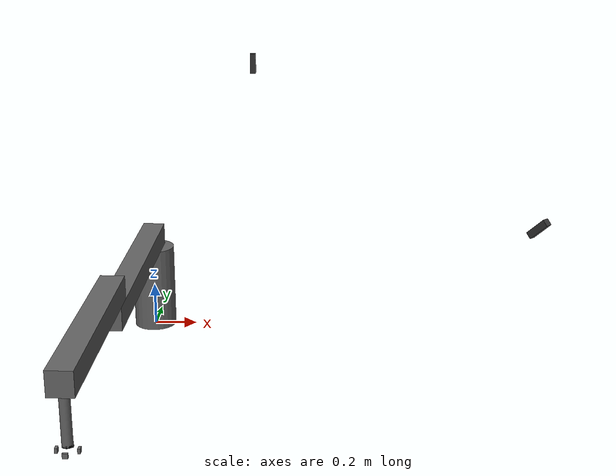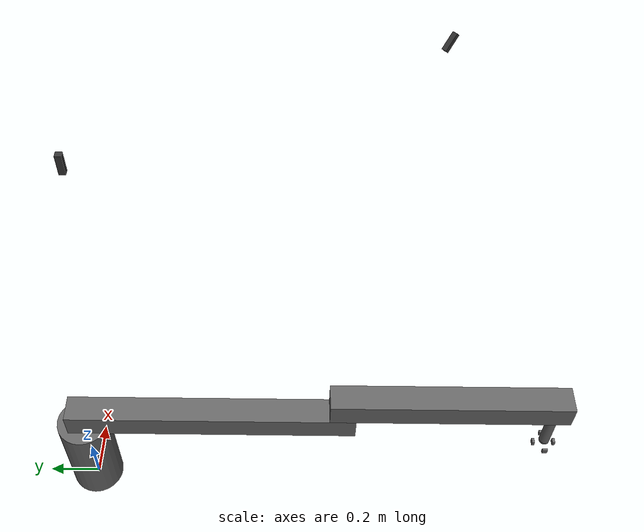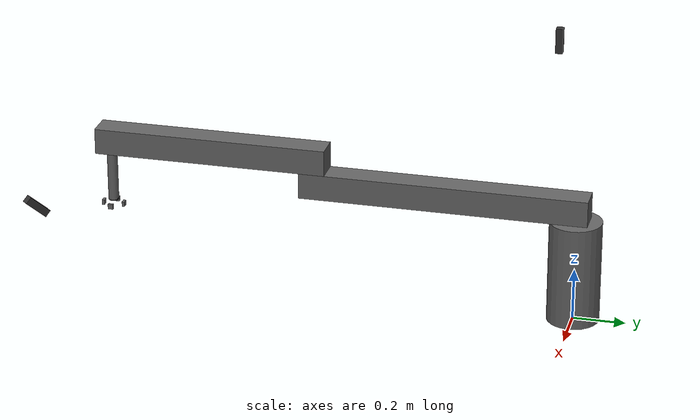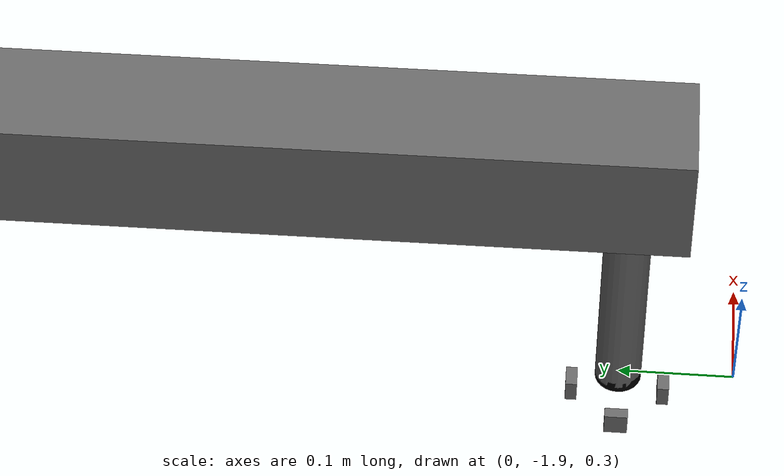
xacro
<?xml version="1.0"?>
<robot xmlns:xacro="http://www.ros.org/wiki/xacro" name="scara_robot">
    <xacro:include filename="$(find arm_description)/urdf/base.urdf.xacro"/>
    <xacro:include filename="$(find arm_description)/urdf/robot.ros_control.xacro"/>
    <xacro:include filename="$(find arm_description)/urdf/camera_d435i.urdf.xacro"/>
    <xacro:include filename="$(find arm_description)/urdf/camera_gripper.urdf.xacro"/>
    <xacro:include filename="$(find arm_description)/urdf/world_camera.urdf.xacro"/>

    <xacro:base_xacro/>
    <xacro:robot_ros_control/>
    <xacro:d435i_camera/>
    <xacro:gripper_camera/>
    <xacro:world_camera/>
</robot>

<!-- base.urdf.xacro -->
<robot xmlns:xacro="http://www.ros.org/wiki/xacro">
    <xacro:macro name="base_xacro">
        <link name="world"/>
        <joint name="joint_fix" type="fixed">
            <parent link="world"/>
            <child link="base_link"/>
        </joint>

        <link name="base_link">
            <collision>
                <origin xyz="0 0 0.2" rpy="0 0 0"/>
                <geometry>
                    <cylinder length="0.4" radius="0.1"/>
                </geometry>
            </collision>
            <visual>
                <origin xyz="0 0 0.2" rpy="0 0 0"/>
                <geometry>
                    <cylinder length="0.4" radius="0.1"/>
                </geometry>
                <material name="dark_gray">
                    <color rgba="0.4 0.4 0.4 1.0"/>
                </material>
            </visual>
            <inertial>
                <origin xyz="0 0 0.2" rpy="0 0 0"/>
                <mass value="2.0"/>
                <inertia ixx="0.0317" ixy="0.0" ixz="0.0" iyy="0.0317" iyz="0.0" izz="0.01"/>
            </inertial>
        </link>
        <gazebo reference="base_link">
            <material>Gazebo/White</material>
        </gazebo>

        <joint name="rotation1" type="revolute">
            <parent link="base_link"/>
            <child link="arm1"/>
            <origin xyz="0 0 0.4" rpy="0 0 0"/>
            <axis xyz="0 0 1"/>
            <limit effort="20" velocity="2.0" lower="-6.4" upper="6.4"/>
            <dynamics damping="0.1" friction="0.05"/>
        </joint>

        <link name="arm1">
            <collision>
                <origin xyz="0 -0.5 0.05" rpy="0 0 0"/>
                <geometry>
                    <box size="0.1 1.1 0.1"/>
                </geometry>
            </collision>
            <visual>
                <origin xyz="0 -0.5 0.05" rpy="0 0 0"/>
                <geometry>
                    <box size="0.1 1.1 0.1"/>
                </geometry>
                <material name="dark_gray">
                    <color rgba="0.4 0.4 0.4 1.0"/>
                </material>
            </visual>
            <inertial>
                <origin xyz="0 -0.5 0.05" rpy="0 0 0"/>
                <mass value="1.5"/>
                <inertia ixx="0.1525" ixy="0.0" ixz="0.0" iyy="0.0025" iyz="0.0" izz="0.1525"/>
            </inertial>
        </link>
        <gazebo reference="arm1">
            <material>Gazebo/White</material>
        </gazebo>

        <joint name="rotation2" type="revolute">
            <parent link="arm1"/>
            <child link="arm2"/>
            <origin xyz="0 -1.0 0.1" rpy="0 0 0"/>
            <axis xyz="0 0 1"/>
            <limit effort="15" velocity="2.0" lower="-6.4" upper="6.4"/>
            <dynamics damping="0.1" friction="0.05"/>
        </joint>

        <link name="arm2">
            <collision>
                <origin xyz="0 -0.4 0.05" rpy="0 0 0"/>
                <geometry>
                    <box size="0.1 0.9 0.1"/>
                </geometry>
            </collision>
            <visual>
                <origin xyz="0 -0.4 0.05" rpy="0 0 0"/>
                <geometry>
                    <box size="0.1 0.9 0.1"/>
                </geometry>
                <material name="dark_gray">
                    <color rgba="0.4 0.4 0.4 1.0"/>
                </material>
            </visual>
            <inertial>
                <origin xyz="0 -0.4 0.05" rpy="0 0 0"/>
                <mass value="1.0"/>
                <inertia ixx="0.0683" ixy="0.0" ixz="0.0" iyy="0.00167" iyz="0.0" izz="0.0683"/>
            </inertial>
        </link>
        <gazebo reference="arm2">
            <material>Gazebo/White</material>
        </gazebo>

        <joint name="gripper_joint" type="prismatic">
            <parent link="arm2"/>
            <child link="gripper_link"/>
            <origin xyz="0 -0.8 0" rpy="0 0 0"/>
            <axis xyz="0 0 1"/>
            <limit effort="10" velocity="0.1" lower="-0.8" upper="0.0"/>
            <dynamics damping="0.1" friction="0.05"/>
        </joint>

        <link name="gripper_link">
            <collision>
                <origin xyz="0 0 -0.1" rpy="0 0 0"/>
                <geometry>
                    <cylinder length="0.2" radius="0.02"/>
                </geometry>
            </collision>
            <visual>
                <origin xyz="0 0 -0.1" rpy="0 0 0"/>
                <geometry>
                    <cylinder length="0.2" radius="0.02"/>
                </geometry>
                <material name="dark_gray">
                    <color rgba="0.4 0.4 0.4 1.0"/>
                </material>
            </visual>
            <inertial>
                <origin xyz="0 0 -0.1" rpy="0 0 0"/>
                <mass value="0.5"/>
                <inertia ixx="0.00172" ixy="0.0" ixz="0.0" iyy="0.00172" iyz="0.0" izz="0.0001"/>
            </inertial>
        </link>
        <gazebo reference="gripper_link">
            <material>Gazebo/White</material>
        </gazebo>

        <!-- Roll joint for end-effector orientation about Z -->
        <joint name="gripper_roll" type="revolute">
            <parent link="gripper_link"/>
            <child link="gripper_roll_link"/>
            <origin xyz="0 0 -0.2" rpy="0 0 0"/>
            <axis xyz="0 0 1"/>
            <limit effort="10" velocity="3.0" lower="-3.14" upper="3.14"/>
            <dynamics damping="0.05" friction="0.02"/>
        </joint>

        <link name="gripper_roll_link">
            <collision>
                <origin xyz="0 0 0" rpy="0 0 0"/>
                <geometry>
                    <cylinder length="0.01" radius="0.02"/>
                </geometry>
            </collision>
            <visual>
                <origin xyz="0 0 0" rpy="0 0 0"/>
                <geometry>
                    <cylinder length="0.01" radius="0.02"/>
                </geometry>
                <material name="dark">
                    <color rgba="0.0 0.0 0.0 1.0"/>
                </material>
            </visual>
            <inertial>
                <origin xyz="0 0 0" rpy="0 0 0"/>
                <mass value="0.05"/>
                <inertia ixx="1e-4" ixy="0.0" ixz="0.0" iyy="1e-4" iyz="0.0" izz="1e-4"/>
            </inertial>
        </link>
        <gazebo reference="gripper_roll_link">
            <material>Gazebo/Dark</material>
        </gazebo>

        <joint name="finger1_joint" type="prismatic">
            <parent link="gripper_roll_link"/>
            <child link="finger1"/>
            <origin xyz="0 -0.04 -0.02" rpy="0 0 0"/>
            <axis xyz="0 1 0"/>
            <limit effort="20" velocity="0.05" lower="0.0" upper="0.04"/>
            <dynamics damping="0.1" friction="0.1"/>
        </joint>
        <link name="finger1">
            <collision name="finger1_collision">
                <origin xyz="0 0 0" rpy="0 0 0"/>
                <geometry>
                    <box size="0.02 0.01 0.02"/>
                </geometry>
            </collision>
            <visual>
                <origin xyz="0 0 0" rpy="0 0 0"/>
                <geometry>
                    <box size="0.02 0.01 0.02"/>
                </geometry>
                <material name="dark_gray">
                    <color rgba="0.4 0.4 0.4 1.0"/>
                </material>
            </visual>
            <inertial>
                <origin xyz="0 0 0" rpy="0 0 0"/>
                <mass value="0.1"/>
                <inertia ixx="4.17e-6" ixy="0.0" ixz="0.0" iyy="6.67e-6" iyz="0.0" izz="4.17e-6"/>
            </inertial>
        </link>
        <gazebo reference="finger1">
            <material>Gazebo/White</material>
            <mu1 value="1000.0" />
            <mu2 value="1000.0" />
            <kp value="1000000.0" />
            <kd value="100.0" />
            <minDepth>0.001</minDepth>
            <maxVel>0.0</maxVel>
        </gazebo>

        <joint name="finger2_joint" type="prismatic">
            <parent link="gripper_roll_link"/>
            <child link="finger2"/>
            <origin xyz="0.04 0 -0.02" rpy="0 0 0"/>
            <axis xyz="1 0 0"/>
            <limit effort="20" velocity="0.05" lower="-0.04" upper="0.0"/>
            <dynamics damping="0.1" friction="0.1"/>
        </joint>
        <link name="finger2">
            <collision name="finger2_collision">
                <origin xyz="0 0 0" rpy="0 0 0"/>
                <geometry>
                    <box size="0.01 0.02 0.02"/>
                </geometry>
            </collision>
            <visual>
                <origin xyz="0 0 0" rpy="0 0 0"/>
                <geometry>
                    <box size="0.01 0.02 0.02"/>
                </geometry>
                <material name="dark_gray">
                    <color rgba="0.4 0.4 0.4 1.0"/>
                </material>
            </visual>
            <inertial>
                <origin xyz="0 0 0" rpy="0 0 0"/>
                <mass value="0.1"/>
                <inertia ixx="6.67e-6" ixy="0.0" ixz="0.0" iyy="4.17e-6" iyz="0.0" izz="4.17e-6"/>
            </inertial>
        </link>
        <gazebo reference="finger2">
            <material>Gazebo/White</material>
            <mu1 value="1000.0" />
            <mu2 value="1000.0" />
            <kp value="1000000.0" />
            <kd value="100.0" />
            <minDepth>0.001</minDepth>
            <maxVel>0.0</maxVel>
        </gazebo>

        <joint name="finger3_joint" type="prismatic">
            <parent link="gripper_roll_link"/>
            <child link="finger3"/>
            <origin xyz="0 0.04 -0.02" rpy="0 0 0"/>
            <axis xyz="0 1 0"/>
            <limit effort="20" velocity="0.05" lower="-0.04" upper="0.0"/>
            <dynamics damping="0.1" friction="0.1"/>
        </joint>
        <link name="finger3">
            <collision name="finger3_collision">
                <origin xyz="0 0 0" rpy="0 0 0"/>
                <geometry>
                    <box size="0.02 0.01 0.02"/>
                </geometry>
            </collision>
            <visual>
                <origin xyz="0 0 0" rpy="0 0 0"/>
                <geometry>
                    <box size="0.02 0.01 0.02"/>
                </geometry>
                <material name="dark_gray">
                    <color rgba="0.4 0.4 0.4 1.0"/>
                </material>
            </visual>
            <inertial>
                <origin xyz="0 0 0" rpy="0 0 0"/>
                <mass value="0.1"/>
                <inertia ixx="4.17e-6" ixy="0.0" ixz="0.0" iyy="6.67e-6" iyz="0.0" izz="4.17e-6"/>
            </inertial>
        </link>
        <gazebo reference="finger3">
            <material>Gazebo/White</material>
            <mu1 value="1000.0" />
            <mu2 value="1000.0" />
            <kp value="1000000.0" />
            <kd value="100.0" />
            <minDepth>0.001</minDepth>
            <maxVel>0.0</maxVel>
        </gazebo>

        <joint name="finger4_joint" type="prismatic">
            <parent link="gripper_roll_link"/>
            <child link="finger4"/>
            <origin xyz="-0.04 0 -0.02" rpy="0 0 0"/>
            <axis xyz="1 0 0"/>
            <limit effort="20" velocity="0.05" lower="0.0" upper="0.04"/>
            <dynamics damping="0.1" friction="0.1"/>
        </joint>
        <link name="finger4">
            <collision name="finger4_collision">
                <origin xyz="0 0 0" rpy="0 0 0"/>
                <geometry>
                    <box size="0.01 0.02 0.02"/>
                </geometry>
            </collision>
            <visual>
                <origin xyz="0 0 0" rpy="0 0 0"/>
                <geometry>
                    <box size="0.01 0.02 0.02"/>
                </geometry>
                <material name="dark_gray">
                    <color rgba="0.4 0.4 0.4 1.0"/>
                </material>
            </visual>
            <inertial>
                <origin xyz="0 0 0" rpy="0 0 0"/>
                <mass value="0.1"/>
                <inertia ixx="6.67e-6" ixy="0.0" ixz="0.0" iyy="4.17e-6" iyz="0.0" izz="4.17e-6"/>
            </inertial>
        </link>
        <gazebo reference="finger4">
            <material>Gazebo/White</material>
            <mu1 value="1000.0" />
            <mu2 value="1000.0" />
            <kp value="1000000.0" />
            <kd value="100.0" />
            <minDepth>0.001</minDepth>
            <maxVel>0.0</maxVel>
        </gazebo>

    </xacro:macro>
</robot>

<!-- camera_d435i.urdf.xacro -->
<robot xmlns:xacro="http://www.ros.org/wiki/xacro">
    <!-- D435i 深度相机的 ROS 模拟配置 -->
    <xacro:macro name="d435i_camera">
        <!-- 相机 link -->
        <link name="camera_link">
            <collision>
                <origin xyz="0 0 0" rpy="0 0 0"/>
                <geometry>
                    <box size="0.09 0.025 0.025"/>
                </geometry>
            </collision>
            <visual>
                <origin xyz="0 0 0" rpy="0 0 0"/>
                <geometry>
                    <box size="0.09 0.025 0.025"/>
                </geometry>
                <material name="dark_gray">
                    <color rgba="0.2 0.2 0.2 1.0"/>
                </material>
            </visual>
            <inertial>
                <origin xyz="0 0 0" rpy="0 0 0"/>
                <mass value="0.1"/>
                <inertia ixx="1e-5" ixy="0.0" ixz="0.0" iyy="1e-5" iyz="0.0" izz="1e-5"/>
            </inertial>
        </link>

        <!-- 光学相机中心 link -->
        <link name="camera_color_optical_frame"/>
        <link name="camera_depth_optical_frame"/>

        <!-- 相机相对于世界的固定关节（俯视） -->
        <joint name="camera_fixed_joint" type="fixed">
            <parent link="world"/>
            <child link="camera_link"/>
            <!-- 放在世界上方,斜135度俯视工作区 -->
            <origin xyz="0.5 0 1.3" rpy="0 1.5708 0"/>
        </joint>

        <!-- 光学 frame 相对于相机的关节 -->
        <joint name="camera_color_optical_joint" type="fixed">
            <parent link="camera_link"/>
            <child link="camera_color_optical_frame"/>
            <!-- Rotate so optical frame aligns with REP-103 when camera_link x:forward, y:right, z:down -->
            <origin xyz="0 0 0" rpy="1.5708 0 1.5708"/>
        </joint>

        <joint name="camera_depth_optical_joint" type="fixed">
            <parent link="camera_link"/>
            <child link="camera_depth_optical_frame"/>
            <origin xyz="0 0 0" rpy="1.5708 0 1.5708"/>
        </joint>

        <!-- Gazebo 插件配置：模拟 RealSense D435i -->
        <gazebo reference="camera_link">
            <sensor name="color_camera" type="camera">
                <camera>
                    <!-- ~69 度,D435i 彩色 FOV -->
                    <horizontal_fov>1.204</horizontal_fov>
                    <!-- ~87 度,D435i 深度 FOV -->
                    <image>
                        <width>848</width>
                        <height>480</height>
                        <format>R8G8B8</format>
                    </image>
                    <clip>
                        <near>0.1</near>
                        <far>6.0</far>
                    </clip>
                </camera>
                <always_on>true</always_on>
                <update_rate>30</update_rate>
                <visualize>true</visualize>
                <plugin name="camera_controller" filename="libgazebo_ros_camera.so">
                    <alwaysOn>true</alwaysOn>
                    <updateRate>30.0</updateRate>
                    <cameraName>camera/color</cameraName>
                    <imageTopicName>image_raw</imageTopicName>
                    <cameraInfoTopicName>camera_info</cameraInfoTopicName>
                    <frameName>camera_color_optical_frame</frameName>
                    <hackBaseline>0.07</hackBaseline>
                </plugin>
            </sensor>
        </gazebo>

        <gazebo reference="camera_link">
            <sensor name="depth_camera" type="depth">
                <camera>
                    <horizontal_fov>1.518</horizontal_fov> <!-- ~87 度,D435i 深度 FOV -->
                    <image>
                        <width>848</width>
                        <height>480</height>
                    </image>
                    <clip>
                        <near>0.1</near>
                        <far>6.0</far>
                    </clip>
                </camera>
                <always_on>true</always_on>
                <update_rate>30</update_rate>
                <visualize>false</visualize>
                <plugin name="depth_camera_controller" filename="libgazebo_ros_openni_kinect.so">
                    <alwaysOn>true</alwaysOn>
                    <updateRate>30.0</updateRate>
                    <cameraName>camera/depth</cameraName>
                    <depthImageTopicName>image_rect_raw</depthImageTopicName>
                    <cameraInfoTopicName>camera_info</cameraInfoTopicName>
                    <pointCloudTopicName>points</pointCloudTopicName>
                    <pointCloudCutoff>0.05</pointCloudCutoff>
                    <pointCloudCutoffMax>8.0</pointCloudCutoffMax>
                    <frameName>camera_depth_optical_frame</frameName>
                </plugin>
            </sensor>
        </gazebo>
    </xacro:macro>
</robot>

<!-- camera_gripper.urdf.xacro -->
<robot xmlns:xacro="http://www.ros.org/wiki/xacro">
    <!-- gripper_roll下方相机的 ROS 模拟配置-->
    <xacro:macro name="gripper_camera">
        <!-- 相机 link -->
        <link name="gripper_camera_link">
            <collision>
                <origin xyz="0 0 0" rpy="0 0 0"/>
                <geometry>
                    <box size="0.001 0.020 0.020"/>
                </geometry>
            </collision>
            <visual>
                <origin xyz="0 0 0" rpy="0 0 0"/>
                <geometry>
                    <box size="0.001 0.020 0.020"/>
                </geometry>
                <material name="dark_gray">
                    <color rgba="0.2 0.2 0.2 1.0"/>
                </material>
            </visual>
            <inertial>
                <origin xyz="0 0 0" rpy="0 0 0"/>
                <mass value="0.01"/>
                <inertia ixx="6.67e-6" ixy="0.0" ixz="0.0" iyy="3.34e-6" iyz="0.0" izz="3.34e-6"/>
            </inertial>
        </link>

        <!-- 光学相机中心 link -->
        <link name="gripper_camera_color_optical_frame"/>
        <link name="gripper_camera_depth_optical_frame"/>

        <!-- 相机相对于gripper_roll_link的固定关节（俯视） -->
        <joint name="gripper_camera_fixed_joint" type="fixed">
            <parent link="gripper_roll_link"/>
            <child link="gripper_camera_link"/>
            <origin xyz="0.0 0.0 -0.005" rpy="0 1.5708 0"/>
        </joint>

        <!-- 光学 frame 相对于相机的关节 -->
        <joint name="gripper_camera_color_optical_joint" type="fixed">
            <parent link="gripper_camera_link"/>
            <child link="gripper_camera_color_optical_frame"/>
            <!-- Rotate so optical frame aligns with REP-103 when camera_link x:forward, y:right, z:down -->
            <origin xyz="0 0 0" rpy="1.5708 0 1.5708"/>
        </joint>

        <joint name="gripper_camera_depth_optical_joint" type="fixed">
            <parent link="gripper_camera_link"/>
            <child link="gripper_camera_depth_optical_frame"/>
            <origin xyz="0 0 0" rpy="1.5708 0 1.5708"/>
        </joint>

        <!-- Gazebo 插件配置：模拟 RealSense D435i -->
        <gazebo reference="gripper_camera_link">
            <sensor name="color_camera" type="camera">
                <camera>
                    <!-- ~69 度,D435i 彩色 FOV -->
                    <horizontal_fov>1.204</horizontal_fov>
                    <!-- ~87 度,D435i 深度 FOV -->
                    <image>
                        <width>848</width>
                        <height>480</height>
                        <format>R8G8B8</format>
                    </image>
                    <clip>
                        <near>0.1</near>
                        <far>6.0</far>
                    </clip>
                </camera>
                <always_on>true</always_on>
                <update_rate>30</update_rate>
                <visualize>true</visualize>
                <plugin name="camera_controller" filename="libgazebo_ros_camera.so">
                    <alwaysOn>true</alwaysOn>
                    <updateRate>30.0</updateRate>
                    <cameraName>gripper_camera/color</cameraName>
                    <imageTopicName>image_raw</imageTopicName>
                    <cameraInfoTopicName>gripper_camera_info</cameraInfoTopicName>
                    <frameName>gripper_camera_color_optical_frame</frameName>
                    <hackBaseline>0.07</hackBaseline>
                </plugin>
            </sensor>
        </gazebo>

        <gazebo reference="gripper_camera_link">
            <sensor name="depth_camera" type="depth">
                <camera>
                    <horizontal_fov>1.518</horizontal_fov> <!-- ~87 度,D435i 深度 FOV -->
                    <image>
                        <width>848</width>
                        <height>480</height>
                    </image>
                    <clip>
                        <near>0.1</near>
                        <far>6.0</far>
                    </clip>
                </camera>
                <always_on>true</always_on>
                <update_rate>30</update_rate>
                <visualize>false</visualize>
                <plugin name="depth_camera_controller" filename="libgazebo_ros_openni_kinect.so">
                    <alwaysOn>true</alwaysOn>
                    <updateRate>30.0</updateRate>
                    <cameraName>gripper_camera/depth</cameraName>
                    <depthImageTopicName>image_rect_raw</depthImageTopicName>
                    <cameraInfoTopicName>gripper_camera_info</cameraInfoTopicName>
                    <pointCloudTopicName>gripper_points</pointCloudTopicName>
                    <pointCloudCutoff>0.05</pointCloudCutoff>
                    <pointCloudCutoffMax>8.0</pointCloudCutoffMax>
                    <frameName>gripper_camera_depth_optical_frame</frameName>
                </plugin>
            </sensor>
        </gazebo>
    </xacro:macro>
</robot>

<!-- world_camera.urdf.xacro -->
<robot xmlns:xacro="http://www.ros.org/wiki/xacro">

    <!-- 观察摄像机 -->
    <xacro:macro name="world_camera">

        <!-- 相机本体 -->
        <link name="world_camera_link">
            <collision>
                <origin xyz="0 0 0" rpy="0 0 0"/>
                <geometry>
                    <box size="0.09 0.025 0.025"/>
                </geometry>
            </collision>

            <visual>
                <origin xyz="0 0 0" rpy="0 0 0"/>
                <geometry>
                    <box size="0.09 0.025 0.025"/>
                </geometry>
                <material name="dark_gray">
                    <color rgba="0.2 0.2 0.2 1.0"/>
                </material>
            </visual>

            <inertial>
                <origin xyz="0 0 0" rpy="0 0 0"/>
                <mass value="0.1"/>
                <inertia ixx="1e-5" ixy="0" ixz="0" iyy="1e-5" iyz="0" izz="1e-5"/>
            </inertial>
        </link>

        <!-- optical frame -->
        <link name="world_camera_color_optical_frame"/>

        <!-- 固定在 world -->
        <joint name="world_camera_fixed_joint" type="fixed">
            <parent link="world"/>
            <child link="world_camera_link"/>

            <!-- 推荐观察位姿 -->
            <origin xyz="1.6 -1.5 1.0" rpy="0 0.75 2.35"/>
        </joint>

        <!-- optical frame -->
        <joint name="world_camera_color_optical_joint" type="fixed">
            <parent link="world_camera_link"/>
            <child link="world_camera_color_optical_frame"/>
            <origin xyz="0 0 0" rpy="1.5708 0 1.5708"/>
        </joint>

        <!-- Gazebo 相机 -->
        <gazebo reference="world_camera_link">
            <sensor name="world_color_camera" type="camera">

                <camera>

                    <!-- 视野可以稍微大一点 -->
                    <horizontal_fov>1.396</horizontal_fov>

                    <image>
                        <width>848</width>
                        <height>480</height>
                        <format>R8G8B8</format>
                    </image>

                    <clip>
                        <near>0.1</near>
                        <far>10.0</far>
                    </clip>

                </camera>

                <always_on>true</always_on>
                <update_rate>30</update_rate>
                <visualize>true</visualize>

                <plugin name="world_camera_controller" filename="libgazebo_ros_camera.so">

                    <alwaysOn>true</alwaysOn>
                    <updateRate>30.0</updateRate>

                    <cameraName>world_camera</cameraName>

                    <imageTopicName>image_raw</imageTopicName>
                    <cameraInfoTopicName>camera_info</cameraInfoTopicName>

                    <frameName>world_camera_color_optical_frame</frameName>

                </plugin>

            </sensor>
        </gazebo>

    </xacro:macro>

</robot>
